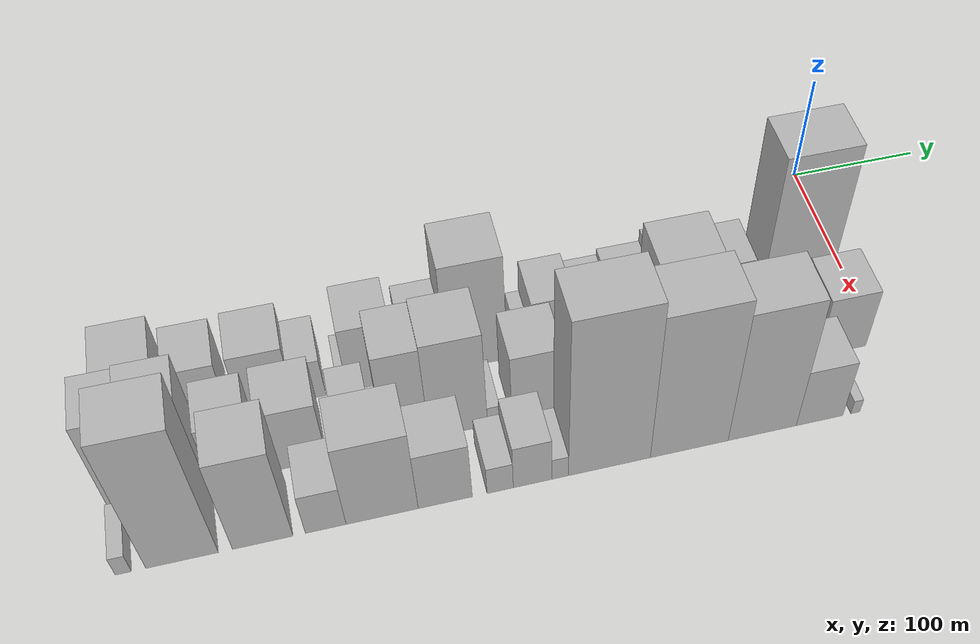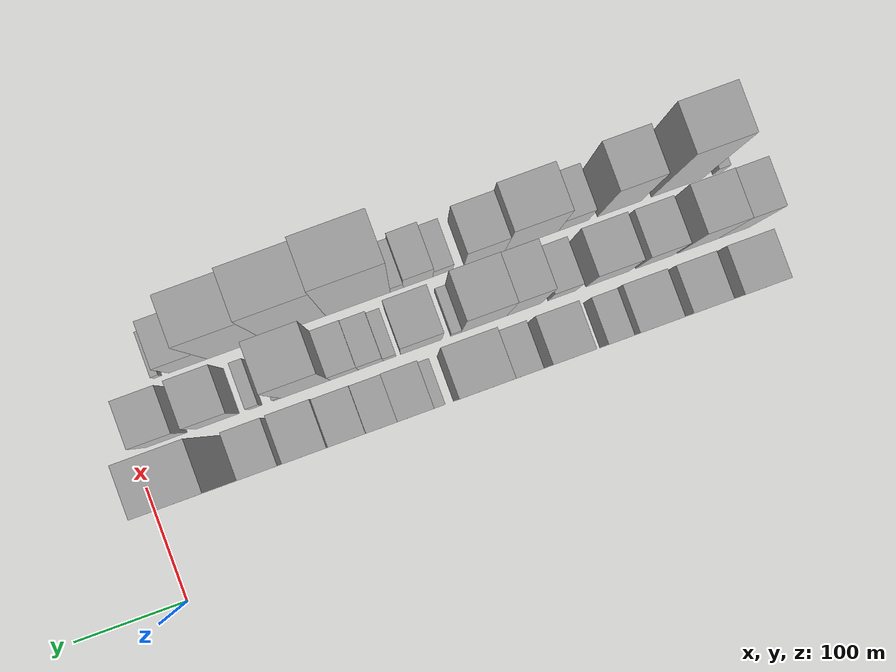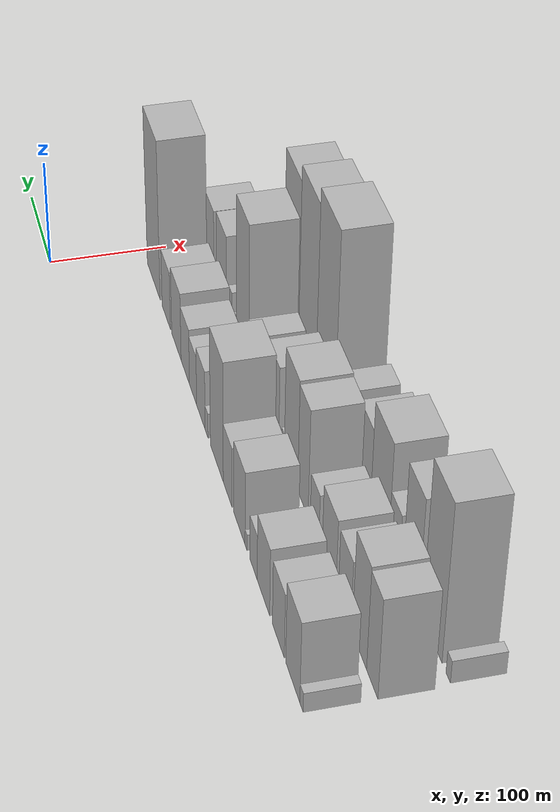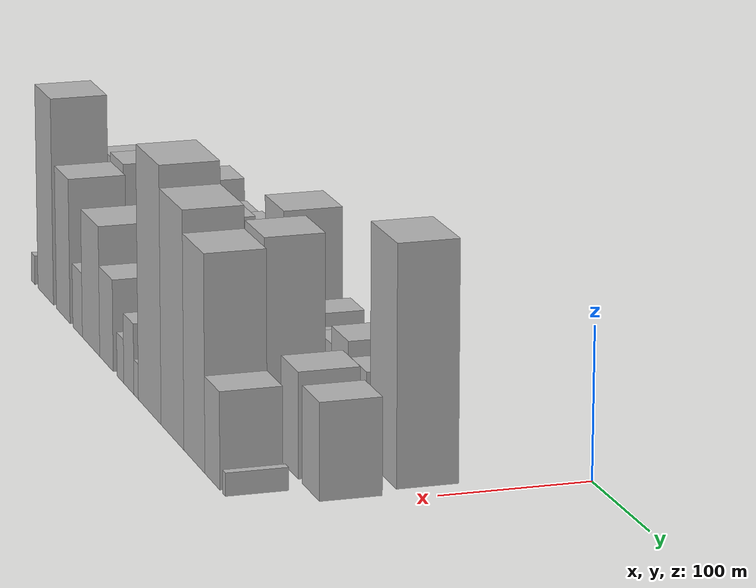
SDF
<sdf version="1.6">
 <world name="default">
  <model name="building_1">
   <static>1</static>
   <pose>100.0000 -543.5680 0 0.000000 0.000000 0.000000</pose>
   <link name="link">
    <pose>0 0 9.00 0 0 0</pose>
    <collision name="collision"><geometry><box><size>40.0000 8.8639 18.0000</size></box></geometry></collision>
    <visual name="visual">
     <cast_shadows>0</cast_shadows>
     <geometry><box><size>40.0000 8.8639 18.0000</size></box></geometry>
     <material>
      <script>
       <uri>model://HANNAS_wall/materials/scripts</uri>
       <uri>model://HANNAS_wall/materials/textures</uri>
       <name>vrc/HANNAS_wall</name>
      </script>
     </material>
    </visual>
   </link>
  </model>
  <model name="building_2">
   <static>1</static>
   <pose>100.0000 -519.7971 0 0.000000 0.000000 0.000000</pose>
   <link name="link">
    <pose>0 0 37.50 0 0 0</pose>
    <collision name="collision"><geometry><box><size>40.0000 38.6779 75.0000</size></box></geometry></collision>
    <visual name="visual">
     <cast_shadows>0</cast_shadows>
     <geometry><box><size>40.0000 38.6779 75.0000</size></box></geometry>
     <material>
      <script>
       <uri>model://HANNAS_wall/materials/scripts</uri>
       <uri>model://HANNAS_wall/materials/textures</uri>
       <name>vrc/HANNAS_wall</name>
      </script>
     </material>
    </visual>
   </link>
  </model>
  <model name="building_3">
   <static>1</static>
   <pose>100.0000 -479.5643 0 0.000000 0.000000 0.000000</pose>
   <link name="link">
    <pose>0 0 30.00 0 0 0</pose>
    <collision name="collision"><geometry><box><size>40.0000 33.7877 60.0000</size></box></geometry></collision>
    <visual name="visual">
     <cast_shadows>0</cast_shadows>
     <geometry><box><size>40.0000 33.7877 60.0000</size></box></geometry>
     <material>
      <script>
       <uri>model://HANNAS_wall/materials/scripts</uri>
       <uri>model://HANNAS_wall/materials/textures</uri>
       <name>vrc/HANNAS_wall</name>
      </script>
     </material>
    </visual>
   </link>
  </model>
  <model name="building_4">
   <static>1</static>
   <pose>100.0000 -436.0321 0 0.000000 0.000000 0.000000</pose>
   <link name="link">
    <pose>0 0 31.50 0 0 0</pose>
    <collision name="collision"><geometry><box><size>40.0000 37.2767 63.0000</size></box></geometry></collision>
    <visual name="visual">
     <cast_shadows>0</cast_shadows>
     <geometry><box><size>40.0000 37.2767 63.0000</size></box></geometry>
     <material>
      <script>
       <uri>model://HANNAS_wall/materials/scripts</uri>
       <uri>model://HANNAS_wall/materials/textures</uri>
       <name>vrc/HANNAS_wall</name>
      </script>
     </material>
    </visual>
   </link>
  </model>
  <model name="building_5">
   <static>1</static>
   <pose>100.0000 -406.3224 0 0.000000 0.000000 0.000000</pose>
   <link name="link">
    <pose>0 0 21.00 0 0 0</pose>
    <collision name="collision"><geometry><box><size>40.0000 22.1427 42.0000</size></box></geometry></collision>
    <visual name="visual">
     <cast_shadows>0</cast_shadows>
     <geometry><box><size>40.0000 22.1427 42.0000</size></box></geometry>
     <material>
      <script>
       <uri>model://HANNAS_wall/materials/scripts</uri>
       <uri>model://HANNAS_wall/materials/textures</uri>
       <name>vrc/HANNAS_wall</name>
      </script>
     </material>
    </visual>
   </link>
  </model>
  <model name="building_6">
   <static>1</static>
   <pose>100.0000 -383.1758 0 0.000000 0.000000 0.000000</pose>
   <link name="link">
    <pose>0 0 7.50 0 0 0</pose>
    <collision name="collision"><geometry><box><size>40.0000 6.1504 15.0000</size></box></geometry></collision>
    <visual name="visual">
     <cast_shadows>0</cast_shadows>
     <geometry><box><size>40.0000 6.1504 15.0000</size></box></geometry>
     <material>
      <script>
       <uri>model://HANNAS_wall/materials/scripts</uri>
       <uri>model://HANNAS_wall/materials/textures</uri>
       <name>vrc/HANNAS_wall</name>
      </script>
     </material>
    </visual>
   </link>
  </model>
  <model name="building_7">
   <static>1</static>
   <pose>100.0000 -362.1694 0 0.000000 0.000000 0.000000</pose>
   <link name="link">
    <pose>0 0 34.50 0 0 0</pose>
    <collision name="collision"><geometry><box><size>40.0000 35.8624 69.0000</size></box></geometry></collision>
    <visual name="visual">
     <cast_shadows>0</cast_shadows>
     <geometry><box><size>40.0000 35.8624 69.0000</size></box></geometry>
     <material>
      <script>
       <uri>model://HANNAS_wall/materials/scripts</uri>
       <uri>model://HANNAS_wall/materials/textures</uri>
       <name>vrc/HANNAS_wall</name>
      </script>
     </material>
    </visual>
   </link>
  </model>
  <model name="building_8">
   <static>1</static>
   <pose>100.0000 -323.6770 0 0.000000 0.000000 0.000000</pose>
   <link name="link">
    <pose>0 0 28.50 0 0 0</pose>
    <collision name="collision"><geometry><box><size>40.0000 29.1222 57.0000</size></box></geometry></collision>
    <visual name="visual">
     <cast_shadows>0</cast_shadows>
     <geometry><box><size>40.0000 29.1222 57.0000</size></box></geometry>
     <material>
      <script>
       <uri>model://HANNAS_wall/materials/scripts</uri>
       <uri>model://HANNAS_wall/materials/textures</uri>
       <name>vrc/HANNAS_wall</name>
      </script>
     </material>
    </visual>
   </link>
  </model>
  <model name="building_9">
   <static>1</static>
   <pose>100.0000 -287.0079 0 0.000000 0.000000 0.000000</pose>
   <link name="link">
    <pose>0 0 57.00 0 0 0</pose>
    <collision name="collision"><geometry><box><size>40.0000 44.2160 114.0000</size></box></geometry></collision>
    <visual name="visual">
     <cast_shadows>0</cast_shadows>
     <geometry><box><size>40.0000 44.2160 114.0000</size></box></geometry>
     <material>
      <script>
       <uri>model://HANNAS_wall/materials/scripts</uri>
       <uri>model://HANNAS_wall/materials/textures</uri>
       <name>vrc/HANNAS_wall</name>
      </script>
     </material>
    </visual>
   </link>
  </model>
  <model name="building_10">
   <static>1</static>
   <pose>100.0000 -251.7439 0 0.000000 0.000000 0.000000</pose>
   <link name="link">
    <pose>0 0 12.00 0 0 0</pose>
    <collision name="collision"><geometry><box><size>40.0000 10.3121 24.0000</size></box></geometry></collision>
    <visual name="visual">
     <cast_shadows>0</cast_shadows>
     <geometry><box><size>40.0000 10.3121 24.0000</size></box></geometry>
     <material>
      <script>
       <uri>model://HANNAS_wall/materials/scripts</uri>
       <uri>model://HANNAS_wall/materials/textures</uri>
       <name>vrc/HANNAS_wall</name>
      </script>
     </material>
    </visual>
   </link>
  </model>
  <model name="building_11">
   <static>1</static>
   <pose>100.0000 -231.2185 0 0.000000 0.000000 0.000000</pose>
   <link name="link">
    <pose>0 0 28.50 0 0 0</pose>
    <collision name="collision"><geometry><box><size>40.0000 30.7387 57.0000</size></box></geometry></collision>
    <visual name="visual">
     <cast_shadows>0</cast_shadows>
     <geometry><box><size>40.0000 30.7387 57.0000</size></box></geometry>
     <material>
      <script>
       <uri>model://HANNAS_wall/materials/scripts</uri>
       <uri>model://HANNAS_wall/materials/textures</uri>
       <name>vrc/HANNAS_wall</name>
      </script>
     </material>
    </visual>
   </link>
  </model>
  <model name="building_12">
   <static>1</static>
   <pose>100.0000 -202.5148 0 0.000000 0.000000 0.000000</pose>
   <link name="link">
    <pose>0 0 24.00 0 0 0</pose>
    <collision name="collision"><geometry><box><size>40.0000 26.6686 48.0000</size></box></geometry></collision>
    <visual name="visual">
     <cast_shadows>0</cast_shadows>
     <geometry><box><size>40.0000 26.6686 48.0000</size></box></geometry>
     <material>
      <script>
       <uri>model://HANNAS_wall/materials/scripts</uri>
       <uri>model://HANNAS_wall/materials/textures</uri>
       <name>vrc/HANNAS_wall</name>
      </script>
     </material>
    </visual>
   </link>
  </model>
  <model name="building_13">
   <static>1</static>
   <pose>100.0000 -173.3997 0 0.000000 0.000000 0.000000</pose>
   <link name="link">
    <pose>0 0 27.00 0 0 0</pose>
    <collision name="collision"><geometry><box><size>40.0000 31.5617 54.0000</size></box></geometry></collision>
    <visual name="visual">
     <cast_shadows>0</cast_shadows>
     <geometry><box><size>40.0000 31.5617 54.0000</size></box></geometry>
     <material>
      <script>
       <uri>model://HANNAS_wall/materials/scripts</uri>
       <uri>model://HANNAS_wall/materials/textures</uri>
       <name>vrc/HANNAS_wall</name>
      </script>
     </material>
    </visual>
   </link>
  </model>
  <model name="building_14">
   <static>1</static>
   <pose>100.0000 -139.2445 0 0.000000 0.000000 0.000000</pose>
   <link name="link">
    <pose>0 0 33.00 0 0 0</pose>
    <collision name="collision"><geometry><box><size>40.0000 36.7486 66.0000</size></box></geometry></collision>
    <visual name="visual">
     <cast_shadows>0</cast_shadows>
     <geometry><box><size>40.0000 36.7486 66.0000</size></box></geometry>
     <material>
      <script>
       <uri>model://HANNAS_wall/materials/scripts</uri>
       <uri>model://HANNAS_wall/materials/textures</uri>
       <name>vrc/HANNAS_wall</name>
      </script>
     </material>
    </visual>
   </link>
  </model>
  <model name="building_15">
   <static>1</static>
   <pose>100.0000 -99.0441 0 0.000000 0.000000 0.000000</pose>
   <link name="link">
    <pose>0 0 28.50 0 0 0</pose>
    <collision name="collision"><geometry><box><size>40.0000 33.6522 57.0000</size></box></geometry></collision>
    <visual name="visual">
     <cast_shadows>0</cast_shadows>
     <geometry><box><size>40.0000 33.6522 57.0000</size></box></geometry>
     <material>
      <script>
       <uri>model://HANNAS_wall/materials/scripts</uri>
       <uri>model://HANNAS_wall/materials/textures</uri>
       <name>vrc/HANNAS_wall</name>
      </script>
     </material>
    </visual>
   </link>
  </model>
  <model name="building_16">
   <static>1</static>
   <pose>100.0000 -47.2371 0 0.000000 0.000000 0.000000</pose>
   <link name="link">
    <pose>0 0 78.00 0 0 0</pose>
    <collision name="collision"><geometry><box><size>40.0000 53.9619 156.0000</size></box></geometry></collision>
    <visual name="visual">
     <cast_shadows>0</cast_shadows>
     <geometry><box><size>40.0000 53.9619 156.0000</size></box></geometry>
     <material>
      <script>
       <uri>model://HANNAS_wall/materials/scripts</uri>
       <uri>model://HANNAS_wall/materials/textures</uri>
       <name>vrc/HANNAS_wall</name>
      </script>
     </material>
    </visual>
   </link>
  </model>
  <model name="building_31">
   <static>1</static>
   <pose>152.0000 -533.9732 0 0.000000 0.000000 0.000000</pose>
   <link name="link">
    <pose>0 0 46.50 0 0 0</pose>
    <collision name="collision"><geometry><box><size>40.0000 28.0535 93.0000</size></box></geometry></collision>
    <visual name="visual">
     <cast_shadows>0</cast_shadows>
     <geometry><box><size>40.0000 28.0535 93.0000</size></box></geometry>
     <material>
      <script>
       <uri>model://HANNAS_wall/materials/scripts</uri>
       <uri>model://HANNAS_wall/materials/textures</uri>
       <name>vrc/HANNAS_wall</name>
      </script>
     </material>
    </visual>
   </link>
  </model>
  <model name="building_32">
   <static>1</static>
   <pose>152.0000 -501.7975 0 0.000000 0.000000 0.000000</pose>
   <link name="link">
    <pose>0 0 48.00 0 0 0</pose>
    <collision name="collision"><geometry><box><size>40.0000 36.2980 96.0000</size></box></geometry></collision>
    <visual name="visual">
     <cast_shadows>0</cast_shadows>
     <geometry><box><size>40.0000 36.2980 96.0000</size></box></geometry>
     <material>
      <script>
       <uri>model://HANNAS_wall/materials/scripts</uri>
       <uri>model://HANNAS_wall/materials/textures</uri>
       <name>vrc/HANNAS_wall</name>
      </script>
     </material>
    </visual>
   </link>
  </model>
  <model name="building_33">
   <static>1</static>
   <pose>152.0000 -463.0290 0 0.000000 0.000000 0.000000</pose>
   <link name="link">
    <pose>0 0 31.50 0 0 0</pose>
    <collision name="collision"><geometry><box><size>40.0000 33.2391 63.0000</size></box></geometry></collision>
    <visual name="visual">
     <cast_shadows>0</cast_shadows>
     <geometry><box><size>40.0000 33.2391 63.0000</size></box></geometry>
     <material>
      <script>
       <uri>model://HANNAS_wall/materials/scripts</uri>
       <uri>model://HANNAS_wall/materials/textures</uri>
       <name>vrc/HANNAS_wall</name>
      </script>
     </material>
    </visual>
   </link>
  </model>
  <model name="building_34">
   <static>1</static>
   <pose>152.0000 -421.1633 0 0.000000 0.000000 0.000000</pose>
   <link name="link">
    <pose>0 0 33.00 0 0 0</pose>
    <collision name="collision"><geometry><box><size>40.0000 38.4921 66.0000</size></box></geometry></collision>
    <visual name="visual">
     <cast_shadows>0</cast_shadows>
     <geometry><box><size>40.0000 38.4921 66.0000</size></box></geometry>
     <material>
      <script>
       <uri>model://HANNAS_wall/materials/scripts</uri>
       <uri>model://HANNAS_wall/materials/textures</uri>
       <name>vrc/HANNAS_wall</name>
      </script>
     </material>
    </visual>
   </link>
  </model>
  <model name="building_35">
   <static>1</static>
   <pose>152.0000 -380.5153 0 0.000000 0.000000 0.000000</pose>
   <link name="link">
    <pose>0 0 24.00 0 0 0</pose>
    <collision name="collision"><geometry><box><size>40.0000 24.8040 48.0000</size></box></geometry></collision>
    <visual name="visual">
     <cast_shadows>0</cast_shadows>
     <geometry><box><size>40.0000 24.8040 48.0000</size></box></geometry>
     <material>
      <script>
       <uri>model://HANNAS_wall/materials/scripts</uri>
       <uri>model://HANNAS_wall/materials/textures</uri>
       <name>vrc/HANNAS_wall</name>
      </script>
     </material>
    </visual>
   </link>
  </model>
  <model name="building_36">
   <static>1</static>
   <pose>152.0000 -346.7919 0 0.000000 0.000000 0.000000</pose>
   <link name="link">
    <pose>0 0 51.00 0 0 0</pose>
    <collision name="collision"><geometry><box><size>40.0000 30.6427 102.0000</size></box></geometry></collision>
    <visual name="visual">
     <cast_shadows>0</cast_shadows>
     <geometry><box><size>40.0000 30.6427 102.0000</size></box></geometry>
     <material>
      <script>
       <uri>model://HANNAS_wall/materials/scripts</uri>
       <uri>model://HANNAS_wall/materials/textures</uri>
       <name>vrc/HANNAS_wall</name>
      </script>
     </material>
    </visual>
   </link>
  </model>
  <model name="building_37">
   <static>1</static>
   <pose>152.0000 -311.0156 0 0.000000 0.000000 0.000000</pose>
   <link name="link">
    <pose>0 0 52.50 0 0 0</pose>
    <collision name="collision"><geometry><box><size>40.0000 40.9099 105.0000</size></box></geometry></collision>
    <visual name="visual">
     <cast_shadows>0</cast_shadows>
     <geometry><box><size>40.0000 40.9099 105.0000</size></box></geometry>
     <material>
      <script>
       <uri>model://HANNAS_wall/materials/scripts</uri>
       <uri>model://HANNAS_wall/materials/textures</uri>
       <name>vrc/HANNAS_wall</name>
      </script>
     </material>
    </visual>
   </link>
  </model>
  <model name="building_38">
   <static>1</static>
   <pose>152.0000 -285.9816 0 0.000000 0.000000 0.000000</pose>
   <link name="link">
    <pose>0 0 10.50 0 0 0</pose>
    <collision name="collision"><geometry><box><size>40.0000 9.1581 21.0000</size></box></geometry></collision>
    <visual name="visual">
     <cast_shadows>0</cast_shadows>
     <geometry><box><size>40.0000 9.1581 21.0000</size></box></geometry>
     <material>
      <script>
       <uri>model://HANNAS_wall/materials/scripts</uri>
       <uri>model://HANNAS_wall/materials/textures</uri>
       <name>vrc/HANNAS_wall</name>
      </script>
     </material>
    </visual>
   </link>
  </model>
  <model name="building_39">
   <static>1</static>
   <pose>152.0000 -255.1567 0 0.000000 0.000000 0.000000</pose>
   <link name="link">
    <pose>0 0 36.00 0 0 0</pose>
    <collision name="collision"><geometry><box><size>40.0000 36.4918 72.0000</size></box></geometry></collision>
    <visual name="visual">
     <cast_shadows>0</cast_shadows>
     <geometry><box><size>40.0000 36.4918 72.0000</size></box></geometry>
     <material>
      <script>
       <uri>model://HANNAS_wall/materials/scripts</uri>
       <uri>model://HANNAS_wall/materials/textures</uri>
       <name>vrc/HANNAS_wall</name>
      </script>
     </material>
    </visual>
   </link>
  </model>
  <model name="building_40">
   <static>1</static>
   <pose>152.0000 -227.0851 0 0.000000 0.000000 0.000000</pose>
   <link name="link">
    <pose>0 0 13.50 0 0 0</pose>
    <collision name="collision"><geometry><box><size>40.0000 11.6513 27.0000</size></box></geometry></collision>
    <visual name="visual">
     <cast_shadows>0</cast_shadows>
     <geometry><box><size>40.0000 11.6513 27.0000</size></box></geometry>
     <material>
      <script>
       <uri>model://HANNAS_wall/materials/scripts</uri>
       <uri>model://HANNAS_wall/materials/textures</uri>
       <name>vrc/HANNAS_wall</name>
      </script>
     </material>
    </visual>
   </link>
  </model>
  <model name="building_41">
   <static>1</static>
   <pose>152.0000 -210.3361 0 0.000000 0.000000 0.000000</pose>
   <link name="link">
    <pose>0 0 21.00 0 0 0</pose>
    <collision name="collision"><geometry><box><size>40.0000 21.8468 42.0000</size></box></geometry></collision>
    <visual name="visual">
     <cast_shadows>0</cast_shadows>
     <geometry><box><size>40.0000 21.8468 42.0000</size></box></geometry>
     <material>
      <script>
       <uri>model://HANNAS_wall/materials/scripts</uri>
       <uri>model://HANNAS_wall/materials/textures</uri>
       <name>vrc/HANNAS_wall</name>
      </script>
     </material>
    </visual>
   </link>
  </model>
  <model name="building_42">
   <static>1</static>
   <pose>152.0000 -186.9256 0 0.000000 0.000000 0.000000</pose>
   <link name="link">
    <pose>0 0 22.50 0 0 0</pose>
    <collision name="collision"><geometry><box><size>40.0000 24.9743 45.0000</size></box></geometry></collision>
    <visual name="visual">
     <cast_shadows>0</cast_shadows>
     <geometry><box><size>40.0000 24.9743 45.0000</size></box></geometry>
     <material>
      <script>
       <uri>model://HANNAS_wall/materials/scripts</uri>
       <uri>model://HANNAS_wall/materials/textures</uri>
       <name>vrc/HANNAS_wall</name>
      </script>
     </material>
    </visual>
   </link>
  </model>
  <model name="building_43">
   <static>1</static>
   <pose>152.0000 -152.5429 0 0.000000 0.000000 0.000000</pose>
   <link name="link">
    <pose>0 0 67.50 0 0 0</pose>
    <collision name="collision"><geometry><box><size>40.0000 43.7910 135.0000</size></box></geometry></collision>
    <visual name="visual">
     <cast_shadows>0</cast_shadows>
     <geometry><box><size>40.0000 43.7910 135.0000</size></box></geometry>
     <material>
      <script>
       <uri>model://HANNAS_wall/materials/scripts</uri>
       <uri>model://HANNAS_wall/materials/textures</uri>
       <name>vrc/HANNAS_wall</name>
      </script>
     </material>
    </visual>
   </link>
  </model>
  <model name="building_44">
   <static>1</static>
   <pose>152.0000 -127.3507 0 0.000000 0.000000 0.000000</pose>
   <link name="link">
    <pose>0 0 7.50 0 0 0</pose>
    <collision name="collision"><geometry><box><size>40.0000 6.5933 15.0000</size></box></geometry></collision>
    <visual name="visual">
     <cast_shadows>0</cast_shadows>
     <geometry><box><size>40.0000 6.5933 15.0000</size></box></geometry>
     <material>
      <script>
       <uri>model://HANNAS_wall/materials/scripts</uri>
       <uri>model://HANNAS_wall/materials/textures</uri>
       <name>vrc/HANNAS_wall</name>
      </script>
     </material>
    </visual>
   </link>
  </model>
  <model name="building_45">
   <static>1</static>
   <pose>152.0000 -108.3668 0 0.000000 0.000000 0.000000</pose>
   <link name="link">
    <pose>0 0 13.50 0 0 0</pose>
    <collision name="collision"><geometry><box><size>40.0000 11.3746 27.0000</size></box></geometry></collision>
    <visual name="visual">
     <cast_shadows>0</cast_shadows>
     <geometry><box><size>40.0000 11.3746 27.0000</size></box></geometry>
     <material>
      <script>
       <uri>model://HANNAS_wall/materials/scripts</uri>
       <uri>model://HANNAS_wall/materials/textures</uri>
       <name>vrc/HANNAS_wall</name>
      </script>
     </material>
    </visual>
   </link>
  </model>
  <model name="building_46">
   <static>1</static>
   <pose>152.0000 -75.0782 0 0.000000 0.000000 0.000000</pose>
   <link name="link">
    <pose>0 0 34.50 0 0 0</pose>
    <collision name="collision"><geometry><box><size>40.0000 37.2026 69.0000</size></box></geometry></collision>
    <visual name="visual">
     <cast_shadows>0</cast_shadows>
     <geometry><box><size>40.0000 37.2026 69.0000</size></box></geometry>
     <material>
      <script>
       <uri>model://HANNAS_wall/materials/scripts</uri>
       <uri>model://HANNAS_wall/materials/textures</uri>
       <name>vrc/HANNAS_wall</name>
      </script>
     </material>
    </visual>
   </link>
  </model>
  <model name="building_47">
   <static>1</static>
   <pose>152.0000 -29.1522 0 0.000000 0.000000 0.000000</pose>
   <link name="link">
    <pose>0 0 31.50 0 0 0</pose>
    <collision name="collision"><geometry><box><size>40.0000 36.6495 63.0000</size></box></geometry></collision>
    <visual name="visual">
     <cast_shadows>0</cast_shadows>
     <geometry><box><size>40.0000 36.6495 63.0000</size></box></geometry>
     <material>
      <script>
       <uri>model://HANNAS_wall/materials/scripts</uri>
       <uri>model://HANNAS_wall/materials/textures</uri>
       <name>vrc/HANNAS_wall</name>
      </script>
     </material>
    </visual>
   </link>
  </model>
  <model name="building_67">
   <static>1</static>
   <pose>204.0000 -539.9155 0 0.000000 0.000000 0.000000</pose>
   <link name="link">
    <pose>0 0 10.50 0 0 0</pose>
    <collision name="collision"><geometry><box><size>40.0000 10.1689 21.0000</size></box></geometry></collision>
    <visual name="visual">
     <cast_shadows>0</cast_shadows>
     <geometry><box><size>40.0000 10.1689 21.0000</size></box></geometry>
     <material>
      <script>
       <uri>model://HANNAS_wall/materials/scripts</uri>
       <uri>model://HANNAS_wall/materials/textures</uri>
       <name>vrc/HANNAS_wall</name>
      </script>
     </material>
    </visual>
   </link>
  </model>
  <model name="building_68">
   <static>1</static>
   <pose>204.0000 -502.8106 0 0.000000 0.000000 0.000000</pose>
   <link name="link">
    <pose>0 0 73.50 0 0 0</pose>
    <collision name="collision"><geometry><box><size>40.0000 46.0410 147.0000</size></box></geometry></collision>
    <visual name="visual">
     <cast_shadows>0</cast_shadows>
     <geometry><box><size>40.0000 46.0410 147.0000</size></box></geometry>
     <material>
      <script>
       <uri>model://HANNAS_wall/materials/scripts</uri>
       <uri>model://HANNAS_wall/materials/textures</uri>
       <name>vrc/HANNAS_wall</name>
      </script>
     </material>
    </visual>
   </link>
  </model>
  <model name="building_69">
   <static>1</static>
   <pose>204.0000 -451.1943 0 0.000000 0.000000 0.000000</pose>
   <link name="link">
    <pose>0 0 51.00 0 0 0</pose>
    <collision name="collision"><geometry><box><size>40.0000 39.1917 102.0000</size></box></geometry></collision>
    <visual name="visual">
     <cast_shadows>0</cast_shadows>
     <geometry><box><size>40.0000 39.1917 102.0000</size></box></geometry>
     <material>
      <script>
       <uri>model://HANNAS_wall/materials/scripts</uri>
       <uri>model://HANNAS_wall/materials/textures</uri>
       <name>vrc/HANNAS_wall</name>
      </script>
     </material>
    </visual>
   </link>
  </model>
  <model name="building_70">
   <static>1</static>
   <pose>204.0000 -410.2224 0 0.000000 0.000000 0.000000</pose>
   <link name="link">
    <pose>0 0 22.50 0 0 0</pose>
    <collision name="collision"><geometry><box><size>40.0000 26.7520 45.0000</size></box></geometry></collision>
    <visual name="visual">
     <cast_shadows>0</cast_shadows>
     <geometry><box><size>40.0000 26.7520 45.0000</size></box></geometry>
     <material>
      <script>
       <uri>model://HANNAS_wall/materials/scripts</uri>
       <uri>model://HANNAS_wall/materials/textures</uri>
       <name>vrc/HANNAS_wall</name>
      </script>
     </material>
    </visual>
   </link>
  </model>
  <model name="building_71">
   <static>1</static>
   <pose>204.0000 -372.8732 0 0.000000 0.000000 0.000000</pose>
   <link name="link">
    <pose>0 0 45.00 0 0 0</pose>
    <collision name="collision"><geometry><box><size>40.0000 47.9465 90.0000</size></box></geometry></collision>
    <visual name="visual">
     <cast_shadows>0</cast_shadows>
     <geometry><box><size>40.0000 47.9465 90.0000</size></box></geometry>
     <material>
      <script>
       <uri>model://HANNAS_wall/materials/scripts</uri>
       <uri>model://HANNAS_wall/materials/textures</uri>
       <name>vrc/HANNAS_wall</name>
      </script>
     </material>
    </visual>
   </link>
  </model>
  <model name="building_72">
   <static>1</static>
   <pose>204.0000 -330.6751 0 0.000000 0.000000 0.000000</pose>
   <link name="link">
    <pose>0 0 31.50 0 0 0</pose>
    <collision name="collision"><geometry><box><size>40.0000 36.4496 63.0000</size></box></geometry></collision>
    <visual name="visual">
     <cast_shadows>0</cast_shadows>
     <geometry><box><size>40.0000 36.4496 63.0000</size></box></geometry>
     <material>
      <script>
       <uri>model://HANNAS_wall/materials/scripts</uri>
       <uri>model://HANNAS_wall/materials/textures</uri>
       <name>vrc/HANNAS_wall</name>
      </script>
     </material>
    </visual>
   </link>
  </model>
  <model name="building_73">
   <static>1</static>
   <pose>204.0000 -293.4745 0 0.000000 0.000000 0.000000</pose>
   <link name="link">
    <pose>0 0 15.00 0 0 0</pose>
    <collision name="collision"><geometry><box><size>40.0000 17.9516 30.0000</size></box></geometry></collision>
    <visual name="visual">
     <cast_shadows>0</cast_shadows>
     <geometry><box><size>40.0000 17.9516 30.0000</size></box></geometry>
     <material>
      <script>
       <uri>model://HANNAS_wall/materials/scripts</uri>
       <uri>model://HANNAS_wall/materials/textures</uri>
       <name>vrc/HANNAS_wall</name>
      </script>
     </material>
    </visual>
   </link>
  </model>
  <model name="building_74">
   <static>1</static>
   <pose>204.0000 -271.2954 0 0.000000 0.000000 0.000000</pose>
   <link name="link">
    <pose>0 0 24.00 0 0 0</pose>
    <collision name="collision"><geometry><box><size>40.0000 26.4065 48.0000</size></box></geometry></collision>
    <visual name="visual">
     <cast_shadows>0</cast_shadows>
     <geometry><box><size>40.0000 26.4065 48.0000</size></box></geometry>
     <material>
      <script>
       <uri>model://HANNAS_wall/materials/scripts</uri>
       <uri>model://HANNAS_wall/materials/textures</uri>
       <name>vrc/HANNAS_wall</name>
      </script>
     </material>
    </visual>
   </link>
  </model>
  <model name="building_75">
   <static>1</static>
   <pose>204.0000 -252.3435 0 0.000000 0.000000 0.000000</pose>
   <link name="link">
    <pose>0 0 12.00 0 0 0</pose>
    <collision name="collision"><geometry><box><size>40.0000 11.4972 24.0000</size></box></geometry></collision>
    <visual name="visual">
     <cast_shadows>0</cast_shadows>
     <geometry><box><size>40.0000 11.4972 24.0000</size></box></geometry>
     <material>
      <script>
       <uri>model://HANNAS_wall/materials/scripts</uri>
       <uri>model://HANNAS_wall/materials/textures</uri>
       <name>vrc/HANNAS_wall</name>
      </script>
     </material>
    </visual>
   </link>
  </model>
  <model name="building_76">
   <static>1</static>
   <pose>204.0000 -217.8556 0 0.000000 0.000000 0.000000</pose>
   <link name="link">
    <pose>0 0 85.50 0 0 0</pose>
    <collision name="collision"><geometry><box><size>40.0000 57.4786 171.0000</size></box></geometry></collision>
    <visual name="visual">
     <cast_shadows>0</cast_shadows>
     <geometry><box><size>40.0000 57.4786 171.0000</size></box></geometry>
     <material>
      <script>
       <uri>model://HANNAS_wall/materials/scripts</uri>
       <uri>model://HANNAS_wall/materials/textures</uri>
       <name>vrc/HANNAS_wall</name>
      </script>
     </material>
    </visual>
   </link>
  </model>
  <model name="building_77">
   <static>1</static>
   <pose>204.0000 -161.2896 0 0.000000 0.000000 0.000000</pose>
   <link name="link">
    <pose>0 0 78.00 0 0 0</pose>
    <collision name="collision"><geometry><box><size>40.0000 55.6534 156.0000</size></box></geometry></collision>
    <visual name="visual">
     <cast_shadows>0</cast_shadows>
     <geometry><box><size>40.0000 55.6534 156.0000</size></box></geometry>
     <material>
      <script>
       <uri>model://HANNAS_wall/materials/scripts</uri>
       <uri>model://HANNAS_wall/materials/textures</uri>
       <name>vrc/HANNAS_wall</name>
      </script>
     </material>
    </visual>
   </link>
  </model>
  <model name="building_78">
   <static>1</static>
   <pose>204.0000 -108.6967 0 0.000000 0.000000 0.000000</pose>
   <link name="link">
    <pose>0 0 70.50 0 0 0</pose>
    <collision name="collision"><geometry><box><size>40.0000 49.5323 141.0000</size></box></geometry></collision>
    <visual name="visual">
     <cast_shadows>0</cast_shadows>
     <geometry><box><size>40.0000 49.5323 141.0000</size></box></geometry>
     <material>
      <script>
       <uri>model://HANNAS_wall/materials/scripts</uri>
       <uri>model://HANNAS_wall/materials/textures</uri>
       <name>vrc/HANNAS_wall</name>
      </script>
     </material>
    </visual>
   </link>
  </model>
  <model name="building_79">
   <static>1</static>
   <pose>204.0000 -66.7433 0 0.000000 0.000000 0.000000</pose>
   <link name="link">
    <pose>0 0 31.50 0 0 0</pose>
    <collision name="collision"><geometry><box><size>40.0000 34.3745 63.0000</size></box></geometry></collision>
    <visual name="visual">
     <cast_shadows>0</cast_shadows>
     <geometry><box><size>40.0000 34.3745 63.0000</size></box></geometry>
     <material>
      <script>
       <uri>model://HANNAS_wall/materials/scripts</uri>
       <uri>model://HANNAS_wall/materials/textures</uri>
       <name>vrc/HANNAS_wall</name>
      </script>
     </material>
    </visual>
   </link>
  </model>
  <model name="building_80">
   <static>1</static>
   <pose>204.0000 -40.1487 0 0.000000 0.000000 0.000000</pose>
   <link name="link">
    <pose>0 0 7.50 0 0 0</pose>
    <collision name="collision"><geometry><box><size>40.0000 6.8147 15.0000</size></box></geometry></collision>
    <visual name="visual">
     <cast_shadows>0</cast_shadows>
     <geometry><box><size>40.0000 6.8147 15.0000</size></box></geometry>
     <material>
      <script>
       <uri>model://HANNAS_wall/materials/scripts</uri>
       <uri>model://HANNAS_wall/materials/textures</uri>
       <name>vrc/HANNAS_wall</name>
      </script>
     </material>
    </visual>
   </link>
  </model>
 </world>
</sdf>
